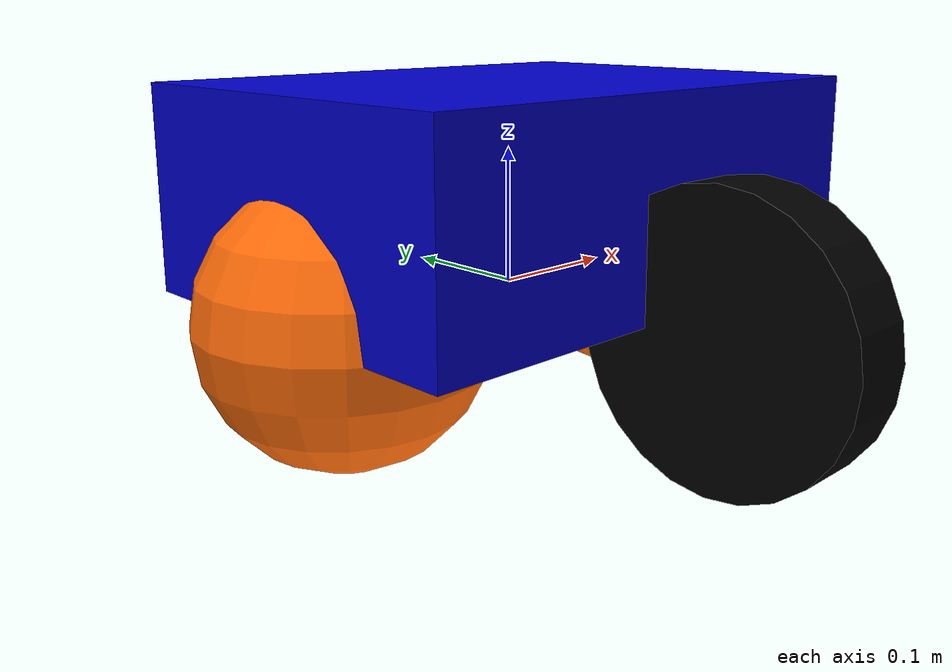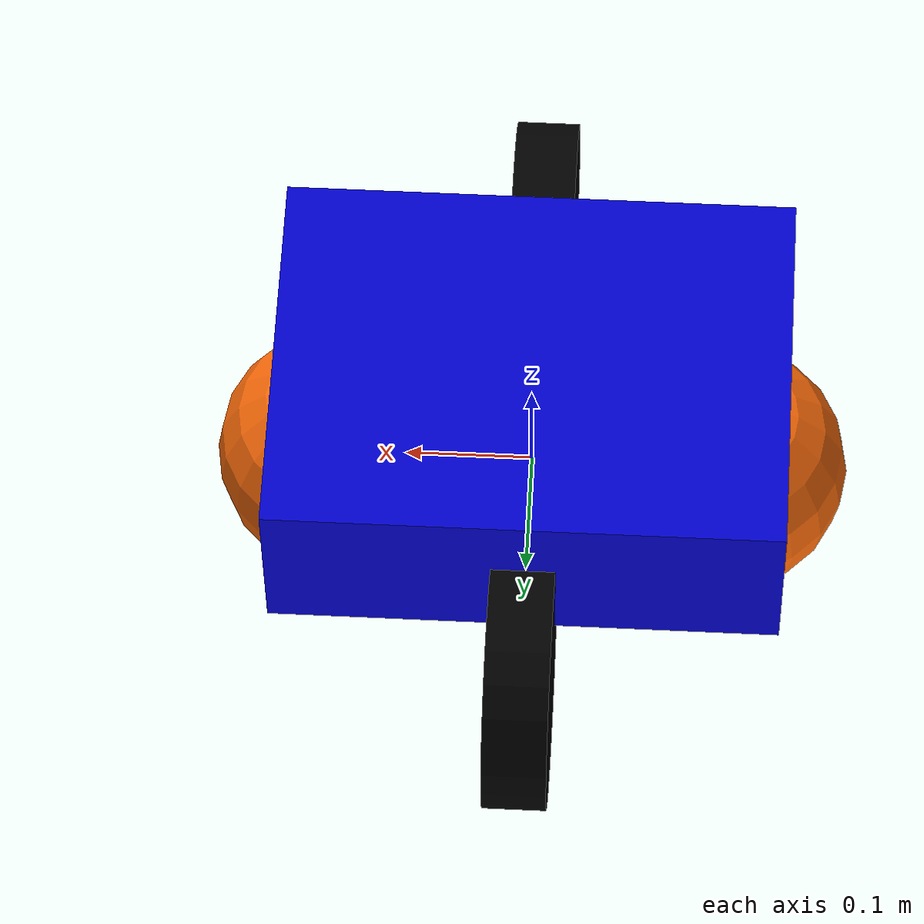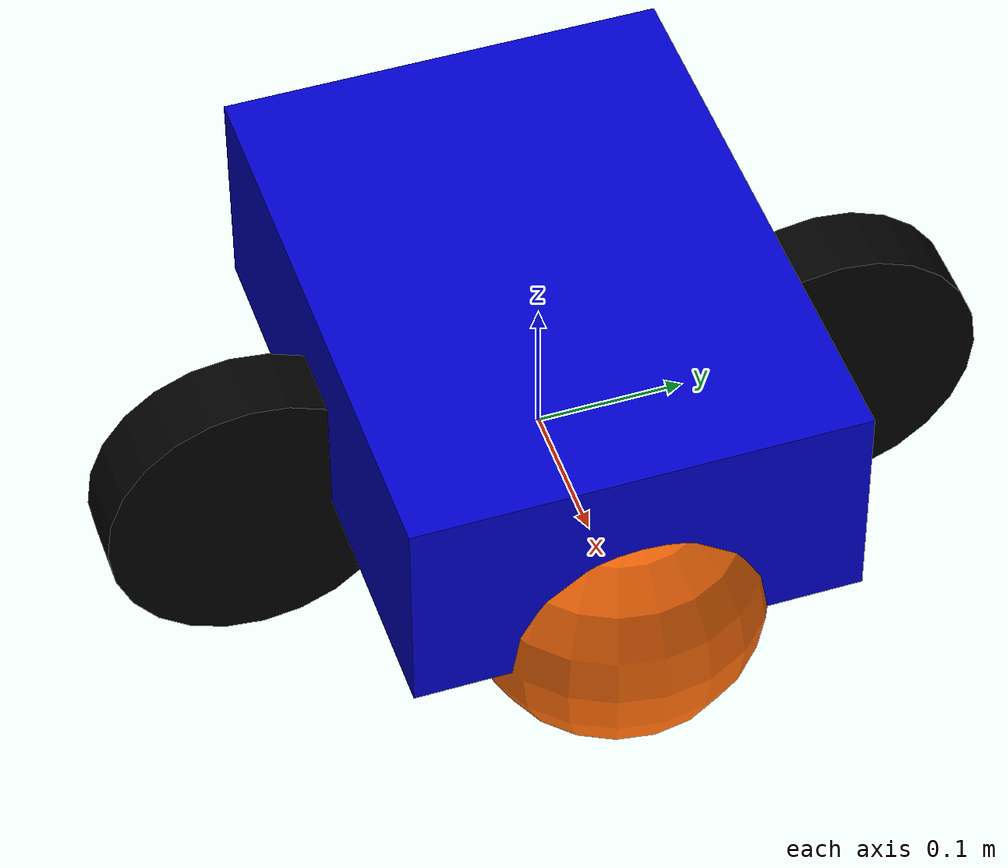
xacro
<?xml version="1.0"?>
<robot name="robot" xmlns:xacro="http://www.ros.org/wiki/xacro">

  <xacro:include filename="$(find differential_drive_robot_description)/urdf/differential_drive_robot.gazebo" />
  <xacro:include filename="$(find differential_drive_robot_description)/urdf/materials.xacro" />
  <xacro:include filename="$(find differential_drive_robot_description)/urdf/xacro_variables.xacro" />

  <link name="chassis">

    <inertial>
      <origin xyz="${chassis_box_x} ${chassis_box_y} ${chassis_box_z}"
              rpy="${chassis_box_r} ${chassis_box_p} ${chassis_box_ya}"/>
      <mass value="${chassis_mass}"/>
      <inertia
        ixx="${(1.0/12.0)*chassis_mass*(chassis_box_width*chassis_box_width   + chassis_box_height*chassis_box_height)}"
        ixy="0.0" ixz="0.0"
        iyy="${(1.0/12.0)*chassis_mass*(chassis_box_length*chassis_box_length + chassis_box_height*chassis_box_height)}"
        iyz="0.0"
        izz="${(1.0/12.0)*chassis_mass*(chassis_box_length*chassis_box_length + chassis_box_width*chassis_box_width)}"/>
    </inertial>

    <!-- Main body box -->
    <collision name="chassis_collision">
      <origin xyz="${chassis_box_x} ${chassis_box_y} ${chassis_box_z}"
              rpy="${chassis_box_r} ${chassis_box_p} ${chassis_box_ya}"/>
      <geometry>
        <box size="${chassis_box_length} ${chassis_box_width} ${chassis_box_height}"/>
      </geometry>
    </collision>

    <visual name="chassis_visual">
      <origin xyz="${chassis_box_x} ${chassis_box_y} ${chassis_box_z}"
              rpy="${chassis_box_r} ${chassis_box_p} ${chassis_box_ya}"/>
      <geometry>
        <box size="${chassis_box_length} ${chassis_box_width} ${chassis_box_height}"/>
      </geometry>
      <material name="blue"/>
    </visual>

    <!-- Front caster sphere (passive, zero-friction set in .gazebo) -->
    <collision name="caster_front_collision">
      <origin xyz="${chassis_caster_x} ${chassis_caster_y} ${chassis_caster_z}"
              rpy="${chassis_caster_r} ${chassis_caster_p} ${chassis_caster_ya}"/>
      <geometry>
        <sphere radius="${chassis_caster_radius}"/>
      </geometry>
    </collision>

    <visual name="caster_front_visual">
      <origin xyz="${chassis_caster_x} ${chassis_caster_y} ${chassis_caster_z}"
              rpy="${chassis_caster_r} ${chassis_caster_p} ${chassis_caster_ya}"/>
      <geometry>
        <sphere radius="${chassis_caster_radius}"/>
      </geometry>
      <material name="orange"/>
    </visual>

    <!-- Rear caster sphere (passive, zero-friction set in .gazebo) -->
    <collision name="caster_rear_collision">
      <origin xyz="${chassis_caster2_x} ${chassis_caster2_y} ${chassis_caster2_z}"
              rpy="${chassis_caster2_r} ${chassis_caster2_p} ${chassis_caster2_ya}"/>
      <geometry>
        <sphere radius="${chassis_caster_radius}"/>
      </geometry>
    </collision>

    <visual name="caster_rear_visual">
      <origin xyz="${chassis_caster2_x} ${chassis_caster2_y} ${chassis_caster2_z}"
              rpy="${chassis_caster2_r} ${chassis_caster2_p} ${chassis_caster2_ya}"/>
      <geometry>
        <sphere radius="${chassis_caster_radius}"/>
      </geometry>
      <material name="orange"/>
    </visual>

  </link>

  <!-- ═══════════════════════════════════════════════════════════════════
       LEFT WHEEL LINK
  ════════════════════════════════════════════════════════════════════ -->
  <link name="left_wheel">

    <collision name="left_wheel_collision">
      <origin xyz="${wheel_x} ${wheel_y} ${wheel_z}"
              rpy="${wheel_r} ${wheel_p} ${wheel_ya}"/>
      <geometry>
        <cylinder radius="${wheel_cylinder_radius}" length="${wheel_cylinder_height}"/>
      </geometry>
    </collision>

    <visual name="left_wheel_visual">
      <origin xyz="${wheel_x} ${wheel_y} ${wheel_z}"
              rpy="${wheel_r} ${wheel_p} ${wheel_ya}"/>
      <geometry>
        <cylinder radius="${wheel_cylinder_radius}" length="${wheel_cylinder_height}"/>
      </geometry>
      <material name="black"/>
    </visual>

    <inertial>
      <origin xyz="${wheel_x} ${wheel_y} ${wheel_z}"
              rpy="${wheel_r} ${wheel_p} ${wheel_ya}"/>
      <mass value="${wheel_mass}"/>
      <!-- Solid cylinder inertia tensor -->
      <inertia
        ixx="${(1.0/12.0)*wheel_mass*(3.0*wheel_cylinder_radius*wheel_cylinder_radius + wheel_cylinder_height*wheel_cylinder_height)}"
        ixy="0.0" ixz="0.0"
        iyy="${(1.0/12.0)*wheel_mass*(3.0*wheel_cylinder_radius*wheel_cylinder_radius + wheel_cylinder_height*wheel_cylinder_height)}"
        iyz="0.0"
        izz="${0.5*wheel_mass*wheel_cylinder_radius*wheel_cylinder_radius}"/>
    </inertial>

  </link>

  <!-- ═══════════════════════════════════════════════════════════════════
       RIGHT WHEEL LINK
  ════════════════════════════════════════════════════════════════════ -->
  <link name="right_wheel">

    <collision name="right_wheel_collision">
      <origin xyz="${wheel_x} ${wheel_y} ${wheel_z}"
              rpy="${wheel_r} ${wheel_p} ${wheel_ya}"/>
      <geometry>
        <cylinder radius="${wheel_cylinder_radius}" length="${wheel_cylinder_height}"/>
      </geometry>
    </collision>

    <visual name="right_wheel_visual">
      <origin xyz="${wheel_x} ${wheel_y} ${wheel_z}"
              rpy="${wheel_r} ${wheel_p} ${wheel_ya}"/>
      <geometry>
        <cylinder radius="${wheel_cylinder_radius}" length="${wheel_cylinder_height}"/>
      </geometry>
      <material name="black"/>
    </visual>

    <inertial>
      <origin xyz="${wheel_x} ${wheel_y} ${wheel_z}"
              rpy="${wheel_r} ${wheel_p} ${wheel_ya}"/>
      <mass value="${wheel_mass}"/>
      <inertia
        ixx="${(1.0/12.0)*wheel_mass*(3.0*wheel_cylinder_radius*wheel_cylinder_radius + wheel_cylinder_height*wheel_cylinder_height)}"
        ixy="0.0" ixz="0.0"
        iyy="${(1.0/12.0)*wheel_mass*(3.0*wheel_cylinder_radius*wheel_cylinder_radius + wheel_cylinder_height*wheel_cylinder_height)}"
        iyz="0.0"
        izz="${0.5*wheel_mass*wheel_cylinder_radius*wheel_cylinder_radius}"/>
    </inertial>

  </link>

  <joint type="continuous" name="left_wheel_hinge">
    <origin xyz="${left_wheel_x} ${left_wheel_y} ${left_wheel_z}" rpy="0 0 0"/>
    <parent link="chassis"/>
    <child  link="left_wheel"/>
    <axis xyz="0 1 0"/>
    <limit effort="100" velocity="100"/>
    <dynamics damping="0.0" friction="0.0"/>
  </joint>

  <joint type="continuous" name="right_wheel_hinge">
    <origin xyz="${right_wheel_x} ${right_wheel_y} ${right_wheel_z}" rpy="0 0 0"/>
    <parent link="chassis"/>
    <child  link="right_wheel"/>
    <axis xyz="0 1 0"/>
    <limit effort="100" velocity="100"/>
    <dynamics damping="0.0" friction="0.0"/>
  </joint>

</robot>

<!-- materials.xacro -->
<robot xmlns:xacro="http://www.ros.org/wiki/xacro">

  <material name="black">
    <color rgba="0.0 0.0 0.0 1.0"/>
  </material>

  <material name="blue">
    <color rgba="0.0 0.0 0.8 1.0"/>
  </material>

  <material name="green">
    <color rgba="0.0 0.8 0.0 1.0"/>
  </material>

  <material name="grey">
    <color rgba="0.2 0.2 0.2 1.0"/>
  </material>

  <!-- orange: was using xacro math expressions (255/255 etc.) which are
       only valid inside a full xacro pipeline.  Use plain floats instead. -->
  <material name="orange">
    <color rgba="1.0 0.424 0.039 1.0"/>
  </material>

  <material name="brown">
    <color rgba="0.871 0.812 0.765 1.0"/>
  </material>

  <material name="red">
    <color rgba="0.8 0.0 0.0 1.0"/>
  </material>

  <material name="white">
    <color rgba="1.0 1.0 1.0 1.0"/>
  </material>

</robot>

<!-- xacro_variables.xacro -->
<robot name="robot" xmlns:xacro="http://www.ros.org/wiki/xacro">

  <!-- ───────────────────────── Mass properties ───────────────────────── -->
  <!-- Reduced from 33 kg / 5 kg to more realistic values for a small robot -->
  <xacro:property name="chassis_mass" value="5.0" />
  <xacro:property name="wheel_mass"   value="0.5" />

  <!-- ───────────────────────── Chassis geometry ──────────────────────── -->
  <!--
    Previously 1.0 x 1.0 x 1.0 m – far too large.
    Now 0.4 m long x 0.3 m wide x 0.15 m tall (a sensible small robot body).
  -->
  <xacro:property name="chassis_box_length" value="0.4" />
  <xacro:property name="chassis_box_width"  value="0.3" />
  <xacro:property name="chassis_box_height" value="0.15" />

  <!-- ───────────────────────── Wheel geometry ────────────────────────── -->
  <!--
    Radius 0.1 m, width 0.05 m – proportionate to the chassis above.
    The wheel cylinder is rotated 90° about X so the rolling axis is Y.
    wheel_p = pi/2 for that orientation.
  -->
  <xacro:property name="wheel_cylinder_radius" value="0.1"    />
  <xacro:property name="wheel_cylinder_height" value="0.05"   />

  <!-- Wheel link local origin (centre of the cylinder geometry) -->
  <xacro:property name="wheel_x"  value="0.0"    />
  <xacro:property name="wheel_y"  value="0.0"    />
  <xacro:property name="wheel_z"  value="0.0"    />
  <xacro:property name="wheel_r"  value="0.0"    />
  <xacro:property name="wheel_p"  value="1.5707" />  <!-- 90° – rolling axis becomes Y -->
  <xacro:property name="wheel_ya" value="0.0"    />

  <!-- ───────────────────────── Chassis link origin ───────────────────── -->
  <xacro:property name="chassis_box_x"  value="0.0"   />
  <xacro:property name="chassis_box_y"  value="0.0"   />
  <xacro:property name="chassis_box_z"  value="0.075" />  <!-- half of 0.15 m height -->
  <xacro:property name="chassis_box_r"  value="0.0"   />
  <xacro:property name="chassis_box_p"  value="0.0"   />
  <xacro:property name="chassis_box_ya" value="0.0"   />

  <!-- ───────────────────────── Caster geometry ───────────────────────── -->
  <xacro:property name="chassis_caster_radius" value="0.1" />

  <!-- Front caster (positive X) -->
  <xacro:property name="chassis_caster_x"   value="0.15"  />
  <xacro:property name="chassis_caster_y"   value="0.0"   />
  <xacro:property name="chassis_caster_z"   value="0.0"   />
  <xacro:property name="chassis_caster_r"   value="0.0"   />
  <xacro:property name="chassis_caster_p"   value="0.0"   />
  <xacro:property name="chassis_caster_ya"  value="0.0"   />

  <!-- Rear caster (negative X) -->
  <xacro:property name="chassis_caster2_x"  value="-0.15" />
  <xacro:property name="chassis_caster2_y"  value="0.0"   />
  <xacro:property name="chassis_caster2_z"  value="0.0"   />
  <xacro:property name="chassis_caster2_r"  value="0.0"   />
  <xacro:property name="chassis_caster2_p"  value="0.0"   />
  <xacro:property name="chassis_caster2_ya" value="0.0"   />

  <!-- ───────────────────────── Wheel joint positions ─────────────────── -->
  <xacro:property name="right_wheel_x" value="0.0"   />
  <xacro:property name="right_wheel_y" value="0.20"  />
  <xacro:property name="right_wheel_z" value="0.0"   />

  <xacro:property name="left_wheel_x"  value="0.0"   />
  <xacro:property name="left_wheel_y"  value="-0.20" />
  <xacro:property name="left_wheel_z"  value="0.0"   />

</robot>
